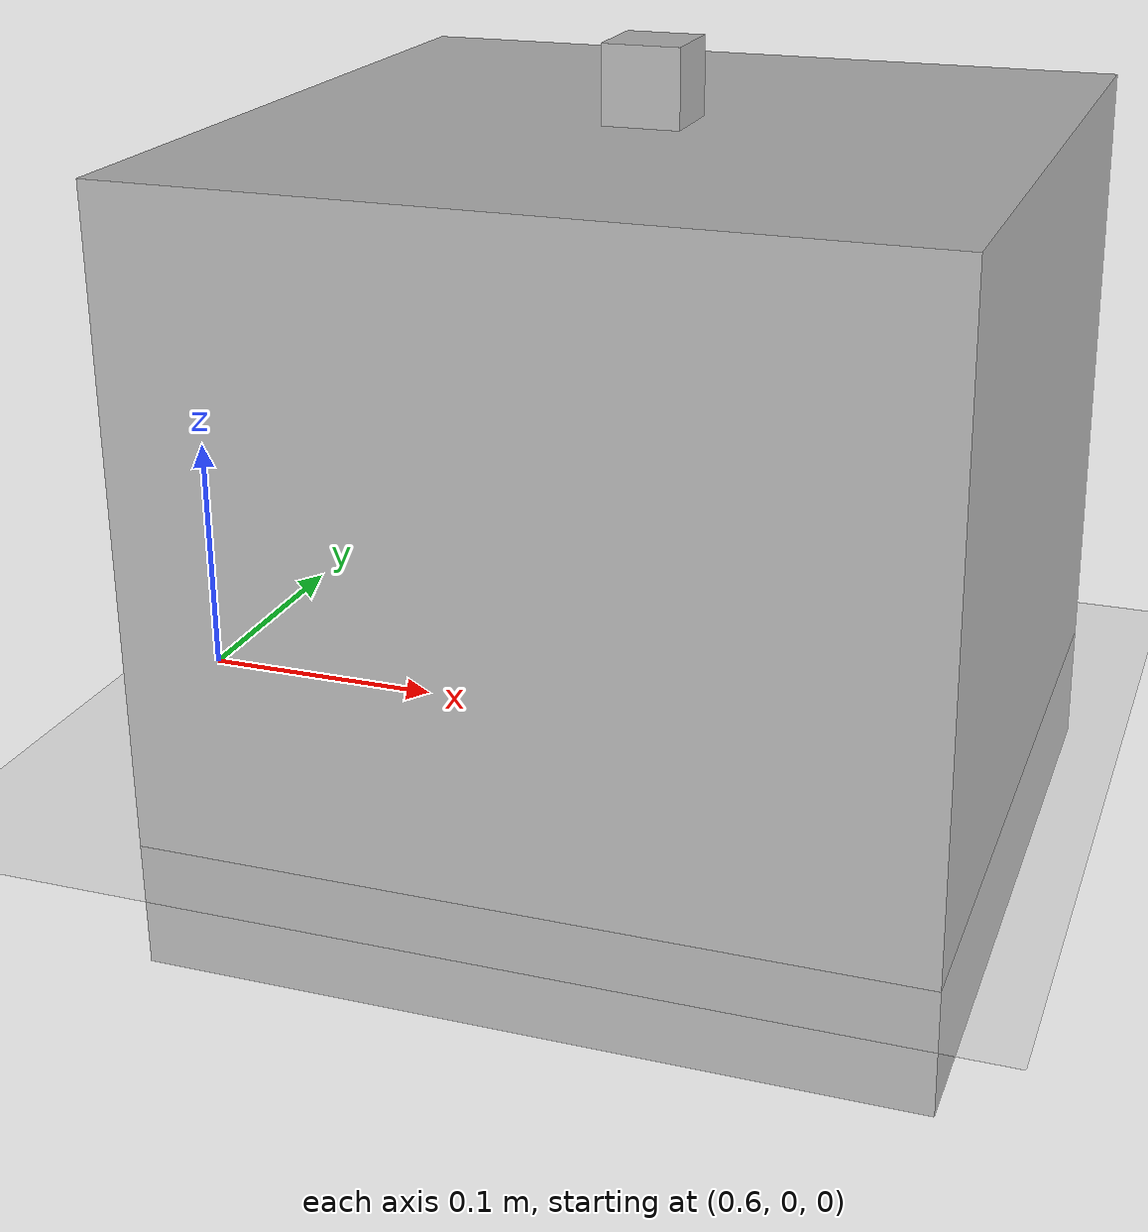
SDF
<?xml version="1.0"?>
<sdf version="1.6">
  <world name="my_world">

    <!-- lighting -->
    <include>
      <uri>model://sun</uri>
    </include>

    <!-- ground plane -->
    <include>
      <uri>model://ground_plane</uri>
    </include>

    <!-- Obstacle 1 -->
    <model name="box1">
      <static>false</static>
      <link name="link">
        <inertial>
          <mass>0.05</mass>
          <!-- solid cube: I = (1/6)*m*a^2 = (1/6)*0.05*0.03^2 -->
          <inertia>
            <ixx>7.5e-6</ixx><ixy>0</ixy><ixz>0</ixz>
            <iyy>7.5e-6</iyy><iyz>0</iyz>
            <izz>7.5e-6</izz>
          </inertia>
        </inertial>
        <collision name="collision">
          <geometry><box><size>0.03 0.03 0.03</size></box></geometry>
          <surface>
            <friction>
              <ode><mu>0.8</mu><mu2>0.8</mu2></ode>
            </friction>
          </surface>
        </collision>
        <visual name="visual">
          <geometry><box><size>0.03 0.03 0.03</size></box></geometry>
        </visual>
      </link>
      <pose>0.8 0 0.265 0 0 0</pose>
    </model>

    <model name="box2">
      <static>true</static>
      <link name="link">
        <collision name="collision">
          <geometry><box><size>0.3 0.3 0.3</size></box></geometry>
        </collision>
        <visual name="visual">
          <geometry><box><size>0.3 0.3 0.3</size></box></geometry>
        </visual>
      </link>
      <pose>0.8 0 0.1 0 0 0</pose>
    </model>

  </world>
</sdf>
